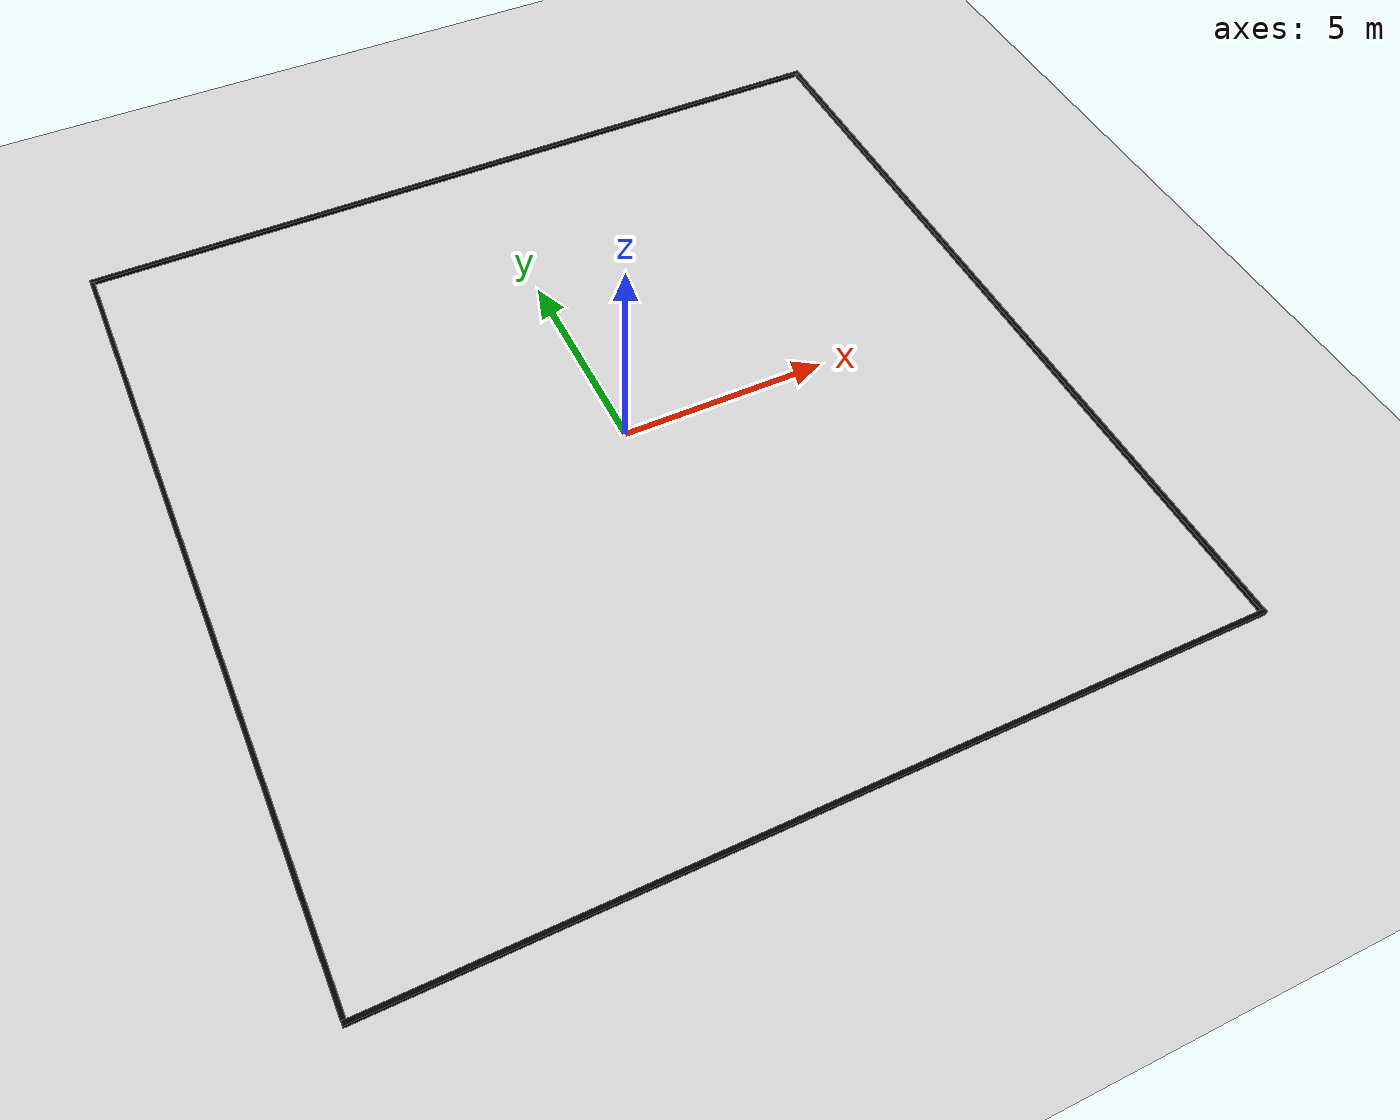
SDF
<sdf version="1.10">
 <world name="default">
  <gravity>0 0 -9.8000000000000007</gravity>
  <magnetic_field>6.0000000000000002e-06 2.3e-05 -4.1999999999999998e-05</magnetic_field>
  <atmosphere type="adiabatic"/>
  <physics name="default_physics" default="false" type="ode">
   <max_step_size>0.01</max_step_size>
   <real_time_factor>1</real_time_factor>
   <real_time_update_rate>1</real_time_update_rate>
  </physics>
  <scene>
   <ambient>0.400000006 0.400000006 0.400000006 1</ambient>
   <background>0.699999988 0.699999988 0.699999988 1</background>
   <shadows>true</shadows>
  </scene>
  <spherical_coordinates>
   <surface_model>EARTH_WGS84</surface_model>
   <latitude_deg>0</latitude_deg>
   <longitude_deg>0</longitude_deg>
   <elevation>0</elevation>
   <heading_deg>0</heading_deg>
  </spherical_coordinates>
  <plugin filename="gz-sim-physics-system" name="gz::sim::systems::Physics"/>
  <plugin filename="gz-sim-sensors-system" name="gz::sim::systems::Sensors">
   <render_engine>ogre2</render_engine>
  </plugin>
  <plugin filename="gz-sim-user-commands-system" name="gz::sim::systems::UserCommands"/>
  <plugin filename="gz-sim-scene-broadcaster-system" name="gz::sim::systems::SceneBroadcaster"/>
  <model name="ground_plane">
   <static>true</static>
   <link name="ground">
    <collision name="collision">
     <geometry><plane><normal>0 0 1</normal><size>20 20</size></plane></geometry>
     <surface>
      <friction><ode><mu>0.2</mu><mu2>0.2</mu2></ode></friction>
      <contact><ode><min_depth>0.02</min_depth></ode></contact>
     </surface>
    </collision>
    <visual name="visual">
     <cast_shadows>false</cast_shadows>
     <geometry><plane><normal>0 0 1</normal><size>20 20</size></plane></geometry>
     <material>
      <script><uri>file://media/materials/scripts/gazebo.material</uri><name>Gazebo/Grey</name></script>
     </material>
    </visual>
    <inertial>
     <mass>1</mass>
     <inertia><ixx>1</ixx><ixy>0</ixy><ixz>0</ixz><iyy>1</iyy><iyz>0</iyz><izz>1</izz></inertia>
    </inertial>
   </link>
  </model>
  <model name="black_wall1">
   <pose>0 9.8 0.05 0 0 0</pose>
   <static>true</static>
   <link name="box_link">
    <collision name="collision"><geometry><box><size>19.7 0.1 0.1</size></box></geometry></collision>
    <visual name="visual">
     <geometry><box><size>19.7 0.1 0.1</size></box></geometry>
     <material><ambient>0 0 0 1</ambient><diffuse>0 0 0 1</diffuse><specular>0 0 0 1</specular></material>
    </visual>
   </link>
  </model>
  <model name="black_wall2">
   <pose>0 -9.8 0.05 0 0 0</pose>
   <static>true</static>
   <link name="box_link">
    <collision name="collision"><geometry><box><size>19.7 0.1 0.1</size></box></geometry></collision>
    <visual name="visual">
     <geometry><box><size>19.7 0.1 0.1</size></box></geometry>
     <material><ambient>0 0 0 1</ambient><diffuse>0 0 0 1</diffuse><specular>0 0 0 1</specular></material>
    </visual>
   </link>
  </model>
  <model name="black_wall3">
   <pose>9.8 0 0.05 0 0 1.570796</pose>
   <static>true</static>
   <link name="box_link">
    <collision name="collision"><geometry><box><size>19.5 0.1 0.1</size></box></geometry></collision>
    <visual name="visual">
     <geometry><box><size>19.5 0.1 0.1</size></box></geometry>
     <material><ambient>0 0 0 1</ambient><diffuse>0 0 0 1</diffuse><specular>0 0 0 1</specular></material>
    </visual>
   </link>
  </model>
  <model name="black_wall4">
   <pose>-9.8 0 0.05 0 0 1.570796</pose>
   <static>true</static>
   <link name="box_link">
    <collision name="collision"><geometry><box><size>19.5 0.1 0.1</size></box></geometry></collision>
    <visual name="visual">
     <geometry><box><size>19.5 0.1 0.1</size></box></geometry>
     <material><ambient>0 0 0 1</ambient><diffuse>0 0 0 1</diffuse><specular>0 0 0 1</specular></material>
    </visual>
   </link>
  </model>
  <light name="sun" type="directional">
   <pose>0 0 10 0 0 0</pose>
   <cast_shadows>false</cast_shadows>
   <intensity>1</intensity>
   <direction>-0.5 0.5 -1</direction>
   <diffuse>0.800000012 0.800000012 0.800000012 1</diffuse>
   <specular>0.100000001 0.100000001 0.100000001 1</specular>
   <attenuation>
    <range>1000</range>
    <linear>0.01</linear>
    <constant>0.90000000000000002</constant>
    <quadratic>0.001</quadratic>
   </attenuation>
   <spot><inner_angle>0</inner_angle><outer_angle>0</outer_angle><falloff>0</falloff></spot>
  </light>
 </world>
</sdf>
